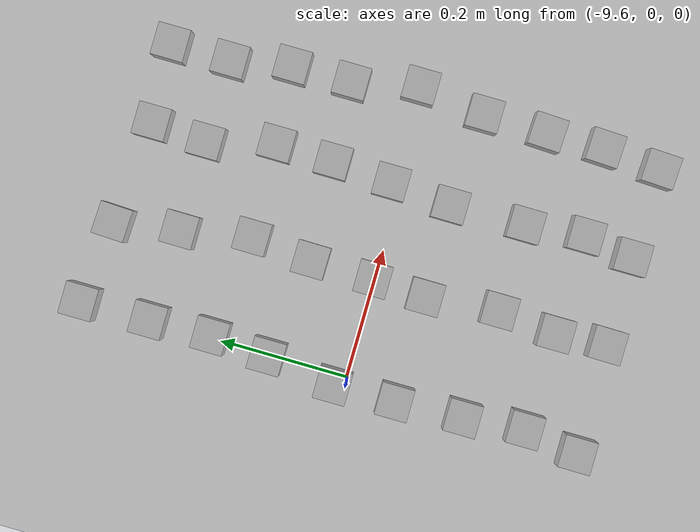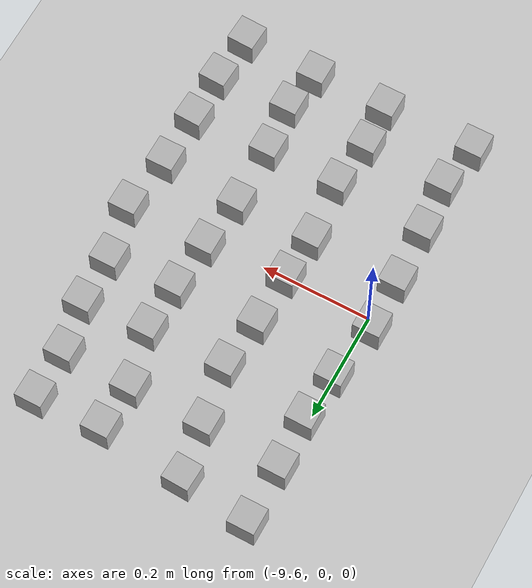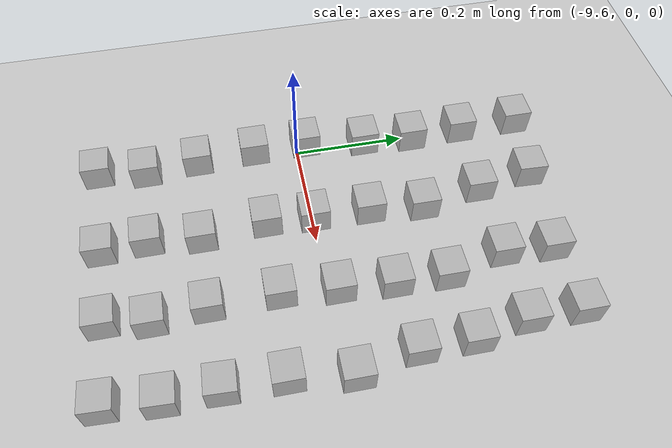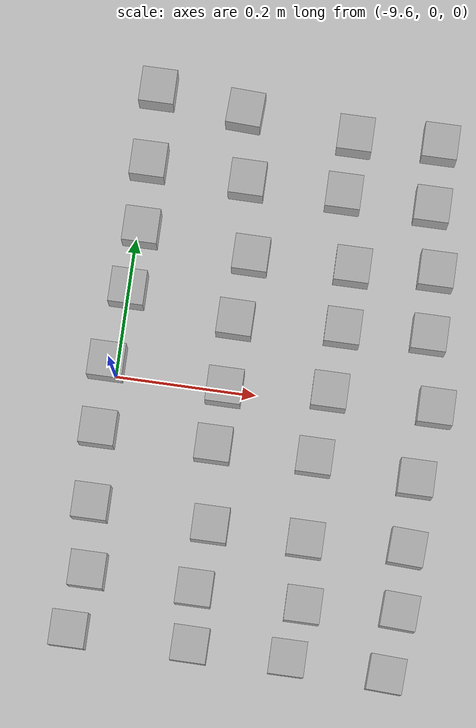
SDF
<sdf version="1.6">
 <world name="default">
  <model name="ground_plane">
   <static>1</static>
   <link name="link">
    <collision name="collision">
     <geometry><plane><normal>0 0 1</normal><size>100 100</size></plane></geometry>
     <surface><friction><ode><mu>100</mu><mu2>50</mu2></ode></friction></surface>
    </collision>
    <visual name="visual">
     <cast_shadows>0</cast_shadows>
     <geometry><plane><normal>0 0 1</normal><size>100 100</size></plane></geometry>
     <material>
      <script><uri>file://media/materials/scripts/gazebo.material</uri><name>Gazebo/Grey</name></script>
     </material>
    </visual>
   </link>
  </model>
  <light name="sun" type="directional">
   <pose>0 0 10 0 -0 0</pose>
   <diffuse>0.8 0.8 0.8 1</diffuse>
   <specular>0.1 0.1 0.1 1</specular>
   <attenuation>
    <range>1000</range>
    <constant>0.9</constant>
    <linear>0.01</linear>
    <quadratic>0.001</quadratic>
   </attenuation>
   <direction>-0.5 0.5 -1</direction>
  </light>
  <plugin name="SetupWorld" filename="libgazebo_plugins.so"/>
  <gravity>0 0 -9.8</gravity>
  <magnetic_field>6e-06 2.3e-05 -4.2e-05</magnetic_field>
  <atmosphere type="adiabatic"/>
  <physics name="default_physics" default="0" type="ode">
   <max_step_size>0.001</max_step_size>
   <real_time_factor>1</real_time_factor>
   <real_time_update_rate>1000</real_time_update_rate>
  </physics>
  <scene><ambient>0.4 0.4 0.4 1</ambient><background>0.7 0.7 0.7 1</background><shadows>1</shadows></scene>
  <spherical_coordinates>
   <surface_model>EARTH_WGS84</surface_model>
   <latitude_deg>0</latitude_deg>
   <longitude_deg>0</longitude_deg>
   <elevation>0</elevation>
   <heading_deg>0</heading_deg>
  </spherical_coordinates>
  <model name="at0">
   <static>0</static>
   <link name="link">
    <inertial>
     <mass>0.01</mass>
     <inertia><ixx>4e-05</ixx><ixy>0</ixy><ixz>0</ixz><iyy>4e-05</iyy><iyz>0</iyz><izz>4e-05</izz></inertia>
    </inertial>
    <visual name="visual">
     <geometry><box><size>0.05 0.05 0.05</size></box></geometry>
     <material>
      <script>
       <uri>model://at0/materials/scripts</uri>
       <uri>model://at0/materials/textures</uri>
       <name>at0/Diffuse</name>
      </script>
     </material>
    </visual>
    <collision name="collision">
     <geometry><box><size>0.05 0.05 0.05</size></box></geometry>
     <surface><friction><ode><mu>0.8</mu><mu2>0.7</mu2></ode></friction></surface>
    </collision>
   </link>
   <pose>-9.16149 -0.187463 0.024992 -2.9e-05 -2.9e-05 -0.04398</pose>
  </model>
  <model name="at0_clone">
   <static>0</static>
   <link name="link">
    <inertial>
     <mass>0.01</mass>
     <inertia><ixx>4e-05</ixx><ixy>0</ixy><ixz>0</ixz><iyy>4e-05</iyy><iyz>0</iyz><izz>4e-05</izz></inertia>
    </inertial>
    <visual name="visual">
     <geometry><box><size>0.05 0.05 0.05</size></box></geometry>
     <material>
      <script>
       <uri>model://at0/materials/scripts</uri>
       <uri>model://at0/materials/textures</uri>
       <name>at0/Diffuse</name>
      </script>
     </material>
    </visual>
    <collision name="collision">
     <geometry><box><size>0.05 0.05 0.05</size></box></geometry>
     <surface><friction><ode><mu>0.8</mu><mu2>0.7</mu2></ode></friction></surface>
    </collision>
   </link>
   <pose>-9.44283 0.100952 0.025 0 0 -0.007828</pose>
  </model>
  <model name="at0_clone_0">
   <static>0</static>
   <link name="link">
    <inertial>
     <mass>0.01</mass>
     <inertia><ixx>4e-05</ixx><ixy>0</ixy><ixz>0</ixz><iyy>4e-05</iyy><iyz>0</iyz><izz>4e-05</izz></inertia>
    </inertial>
    <visual name="visual">
     <geometry><box><size>0.05 0.05 0.05</size></box></geometry>
     <material>
      <script>
       <uri>model://at0/materials/scripts</uri>
       <uri>model://at0/materials/textures</uri>
       <name>at0/Diffuse</name>
      </script>
     </material>
    </visual>
    <collision name="collision">
     <geometry><box><size>0.05 0.05 0.05</size></box></geometry>
     <surface><friction><ode><mu>0.8</mu><mu2>0.7</mu2></ode></friction></surface>
    </collision>
   </link>
   <pose>-9.44298 -0.361066 0.025 0 0 -0.007842</pose>
  </model>
  <model name="at0_clone_1">
   <static>0</static>
   <link name="link">
    <inertial>
     <mass>0.01</mass>
     <inertia><ixx>4e-05</ixx><ixy>0</ixy><ixz>0</ixz><iyy>4e-05</iyy><iyz>0</iyz><izz>4e-05</izz></inertia>
    </inertial>
    <visual name="visual">
     <geometry><box><size>0.05 0.05 0.05</size></box></geometry>
     <material>
      <script>
       <uri>model://at0/materials/scripts</uri>
       <uri>model://at0/materials/textures</uri>
       <name>at0/Diffuse</name>
      </script>
     </material>
    </visual>
    <collision name="collision">
     <geometry><box><size>0.05 0.05 0.05</size></box></geometry>
     <surface><friction><ode><mu>0.8</mu><mu2>0.7</mu2></ode></friction></surface>
    </collision>
   </link>
   <pose>-9.30946 0.386055 0.025 0 0 -8.7e-05</pose>
  </model>
  <model name="at0_clone_2">
   <static>0</static>
   <link name="link">
    <inertial>
     <mass>0.01</mass>
     <inertia><ixx>4e-05</ixx><ixy>0</ixy><ixz>0</ixz><iyy>4e-05</iyy><iyz>0</iyz><izz>4e-05</izz></inertia>
    </inertial>
    <visual name="visual">
     <geometry><box><size>0.05 0.05 0.05</size></box></geometry>
     <material>
      <script>
       <uri>model://at0/materials/scripts</uri>
       <uri>model://at0/materials/textures</uri>
       <name>at0/Diffuse</name>
      </script>
     </material>
    </visual>
    <collision name="collision">
     <geometry><box><size>0.05 0.05 0.05</size></box></geometry>
     <surface><friction><ode><mu>0.8</mu><mu2>0.7</mu2></ode></friction></surface>
    </collision>
   </link>
   <pose>-9.46961 0.401419 0.025 0 0 -0.043988</pose>
  </model>
  <model name="at0_clone_3">
   <static>0</static>
   <link name="link">
    <inertial>
     <mass>0.01</mass>
     <inertia><ixx>4e-05</ixx><ixy>0</ixy><ixz>0</ixz><iyy>4e-05</iyy><iyz>0</iyz><izz>4e-05</izz></inertia>
    </inertial>
    <visual name="visual">
     <geometry><box><size>0.05 0.05 0.05</size></box></geometry>
     <material>
      <script>
       <uri>model://at0/materials/scripts</uri>
       <uri>model://at0/materials/textures</uri>
       <name>at0/Diffuse</name>
      </script>
     </material>
    </visual>
    <collision name="collision">
     <geometry><box><size>0.05 0.05 0.05</size></box></geometry>
     <surface><friction><ode><mu>0.8</mu><mu2>0.7</mu2></ode></friction></surface>
    </collision>
   </link>
   <pose>-9.29716 0.017074 0.025 0 -0 0</pose>
  </model>
  <model name="at0_clone_4">
   <static>0</static>
   <link name="link">
    <inertial>
     <mass>0.01</mass>
     <inertia><ixx>4e-05</ixx><ixy>0</ixy><ixz>0</ixz><iyy>4e-05</iyy><iyz>0</iyz><izz>4e-05</izz></inertia>
    </inertial>
    <visual name="visual">
     <geometry><box><size>0.05 0.05 0.05</size></box></geometry>
     <material>
      <script>
       <uri>model://at0/materials/scripts</uri>
       <uri>model://at0/materials/textures</uri>
       <name>at0/Diffuse</name>
      </script>
     </material>
    </visual>
    <collision name="collision">
     <geometry><box><size>0.05 0.05 0.05</size></box></geometry>
     <surface><friction><ode><mu>0.8</mu><mu2>0.7</mu2></ode></friction></surface>
    </collision>
   </link>
   <pose>-9.61258 -0.078194 0.025 0 -0 0</pose>
  </model>
  <model name="at0_clone_5">
   <static>0</static>
   <link name="link">
    <inertial>
     <mass>0.01</mass>
     <inertia><ixx>4e-05</ixx><ixy>0</ixy><ixz>0</ixz><iyy>4e-05</iyy><iyz>0</iyz><izz>4e-05</izz></inertia>
    </inertial>
    <visual name="visual">
     <geometry><box><size>0.05 0.05 0.05</size></box></geometry>
     <material>
      <script>
       <uri>model://at0/materials/scripts</uri>
       <uri>model://at0/materials/textures</uri>
       <name>at0/Diffuse</name>
      </script>
     </material>
    </visual>
    <collision name="collision">
     <geometry><box><size>0.05 0.05 0.05</size></box></geometry>
     <surface><friction><ode><mu>0.8</mu><mu2>0.7</mu2></ode></friction></surface>
    </collision>
   </link>
   <pose>-9.28887 0.19817 0.025 0 -0 0</pose>
  </model>
  <model name="at0_clone_6">
   <static>0</static>
   <link name="link">
    <inertial>
     <mass>0.01</mass>
     <inertia><ixx>4e-05</ixx><ixy>0</ixy><ixz>0</ixz><iyy>4e-05</iyy><iyz>0</iyz><izz>4e-05</izz></inertia>
    </inertial>
    <visual name="visual">
     <geometry><box><size>0.05 0.05 0.05</size></box></geometry>
     <material>
      <script>
       <uri>model://at0/materials/scripts</uri>
       <uri>model://at0/materials/textures</uri>
       <name>at0/Diffuse</name>
      </script>
     </material>
    </visual>
    <collision name="collision">
     <geometry><box><size>0.05 0.05 0.05</size></box></geometry>
     <surface><friction><ode><mu>0.8</mu><mu2>0.7</mu2></ode></friction></surface>
    </collision>
   </link>
   <pose>-9.45318 0.301941 0.025 0 0 -0.004499</pose>
  </model>
  <model name="at0_clone_7">
   <static>0</static>
   <link name="link">
    <inertial>
     <mass>0.01</mass>
     <inertia><ixx>4e-05</ixx><ixy>0</ixy><ixz>0</ixz><iyy>4e-05</iyy><iyz>0</iyz><izz>4e-05</izz></inertia>
    </inertial>
    <visual name="visual">
     <geometry><box><size>0.05 0.05 0.05</size></box></geometry>
     <material>
      <script>
       <uri>model://at0/materials/scripts</uri>
       <uri>model://at0/materials/textures</uri>
       <name>at0/Diffuse</name>
      </script>
     </material>
    </visual>
    <collision name="collision">
     <geometry><box><size>0.05 0.05 0.05</size></box></geometry>
     <surface><friction><ode><mu>0.8</mu><mu2>0.7</mu2></ode></friction></surface>
    </collision>
   </link>
   <pose>-9.43335 0.194752 0.025 0 0 -0.004502</pose>
  </model>
  <model name="at0_clone_8">
   <static>0</static>
   <link name="link">
    <inertial>
     <mass>0.01</mass>
     <inertia><ixx>4e-05</ixx><ixy>0</ixy><ixz>0</ixz><iyy>4e-05</iyy><iyz>0</iyz><izz>4e-05</izz></inertia>
    </inertial>
    <visual name="visual">
     <geometry><box><size>0.05 0.05 0.05</size></box></geometry>
     <material>
      <script>
       <uri>model://at0/materials/scripts</uri>
       <uri>model://at0/materials/textures</uri>
       <name>at0/Diffuse</name>
      </script>
     </material>
    </visual>
    <collision name="collision">
     <geometry><box><size>0.05 0.05 0.05</size></box></geometry>
     <surface><friction><ode><mu>0.8</mu><mu2>0.7</mu2></ode></friction></surface>
    </collision>
   </link>
   <pose>-9.29073 0.109529 0.024995 -1.4e-05 3.2e-05 -0.00014</pose>
  </model>
  <model name="at0_clone_9">
   <static>0</static>
   <link name="link">
    <inertial>
     <mass>0.01</mass>
     <inertia><ixx>4e-05</ixx><ixy>0</ixy><ixz>0</ixz><iyy>4e-05</iyy><iyz>0</iyz><izz>4e-05</izz></inertia>
    </inertial>
    <visual name="visual">
     <geometry><box><size>0.05 0.05 0.05</size></box></geometry>
     <material>
      <script>
       <uri>model://at0/materials/scripts</uri>
       <uri>model://at0/materials/textures</uri>
       <name>at0/Diffuse</name>
      </script>
     </material>
    </visual>
    <collision name="collision">
     <geometry><box><size>0.05 0.05 0.05</size></box></geometry>
     <surface><friction><ode><mu>0.8</mu><mu2>0.7</mu2></ode></friction></surface>
    </collision>
   </link>
   <pose>-9.6075 -0.182973 0.025 0 -0 0</pose>
  </model>
  <model name="at0_clone_10">
   <static>0</static>
   <link name="link">
    <inertial>
     <mass>0.01</mass>
     <inertia><ixx>4e-05</ixx><ixy>0</ixy><ixz>0</ixz><iyy>4e-05</iyy><iyz>0</iyz><izz>4e-05</izz></inertia>
    </inertial>
    <visual name="visual">
     <geometry><box><size>0.05 0.05 0.05</size></box></geometry>
     <material>
      <script>
       <uri>model://at0/materials/scripts</uri>
       <uri>model://at0/materials/textures</uri>
       <name>at0/Diffuse</name>
      </script>
     </material>
    </visual>
    <collision name="collision">
     <geometry><box><size>0.05 0.05 0.05</size></box></geometry>
     <surface><friction><ode><mu>0.8</mu><mu2>0.7</mu2></ode></friction></surface>
    </collision>
   </link>
   <pose>-9.30642 -0.361124 0.025 0 -0 0</pose>
  </model>
  <model name="at0_clone_11">
   <static>0</static>
   <link name="link">
    <inertial>
     <mass>0.01</mass>
     <inertia><ixx>4e-05</ixx><ixy>0</ixy><ixz>0</ixz><iyy>4e-05</iyy><iyz>0</iyz><izz>4e-05</izz></inertia>
    </inertial>
    <visual name="visual">
     <geometry><box><size>0.05 0.05 0.05</size></box></geometry>
     <material>
      <script>
       <uri>model://at0/materials/scripts</uri>
       <uri>model://at0/materials/textures</uri>
       <name>at0/Diffuse</name>
      </script>
     </material>
    </visual>
    <collision name="collision">
     <geometry><box><size>0.05 0.05 0.05</size></box></geometry>
     <surface><friction><ode><mu>0.8</mu><mu2>0.7</mu2></ode></friction></surface>
    </collision>
   </link>
   <pose>-9.59298 0.21411 0.025 0 -0 0</pose>
  </model>
  <model name="at0_clone_12">
   <static>0</static>
   <link name="link">
    <inertial>
     <mass>0.01</mass>
     <inertia><ixx>4e-05</ixx><ixy>0</ixy><ixz>0</ixz><iyy>4e-05</iyy><iyz>0</iyz><izz>4e-05</izz></inertia>
    </inertial>
    <visual name="visual">
     <geometry><box><size>0.05 0.05 0.05</size></box></geometry>
     <material>
      <script>
       <uri>model://at0/materials/scripts</uri>
       <uri>model://at0/materials/textures</uri>
       <name>at0/Diffuse</name>
      </script>
     </material>
    </visual>
    <collision name="collision">
     <geometry><box><size>0.05 0.05 0.05</size></box></geometry>
     <surface><friction><ode><mu>0.8</mu><mu2>0.7</mu2></ode></friction></surface>
    </collision>
   </link>
   <pose>-9.43785 -0.191913 0.025 0 -0 0</pose>
  </model>
  <model name="at0_clone_13">
   <static>0</static>
   <link name="link">
    <inertial>
     <mass>0.01</mass>
     <inertia><ixx>4e-05</ixx><ixy>0</ixy><ixz>0</ixz><iyy>4e-05</iyy><iyz>0</iyz><izz>4e-05</izz></inertia>
    </inertial>
    <visual name="visual">
     <geometry><box><size>0.05 0.05 0.05</size></box></geometry>
     <material>
      <script>
       <uri>model://at0/materials/scripts</uri>
       <uri>model://at0/materials/textures</uri>
       <name>at0/Diffuse</name>
      </script>
     </material>
    </visual>
    <collision name="collision">
     <geometry><box><size>0.05 0.05 0.05</size></box></geometry>
     <surface><friction><ode><mu>0.8</mu><mu2>0.7</mu2></ode></friction></surface>
    </collision>
   </link>
   <pose>-9.44904 -0.079288 0.025 0 -0 0</pose>
  </model>
  <model name="at0_clone_14">
   <static>0</static>
   <link name="link">
    <inertial>
     <mass>0.01</mass>
     <inertia><ixx>4e-05</ixx><ixy>0</ixy><ixz>0</ixz><iyy>4e-05</iyy><iyz>0</iyz><izz>4e-05</izz></inertia>
    </inertial>
    <visual name="visual">
     <geometry><box><size>0.05 0.05 0.05</size></box></geometry>
     <material>
      <script>
       <uri>model://at0/materials/scripts</uri>
       <uri>model://at0/materials/textures</uri>
       <name>at0/Diffuse</name>
      </script>
     </material>
    </visual>
    <collision name="collision">
     <geometry><box><size>0.05 0.05 0.05</size></box></geometry>
     <surface><friction><ode><mu>0.8</mu><mu2>0.7</mu2></ode></friction></surface>
    </collision>
   </link>
   <pose>-9.61272 -0.362801 0.025 0 -0 0</pose>
  </model>
  <model name="at0_clone_15">
   <static>0</static>
   <link name="link">
    <inertial>
     <mass>0.01</mass>
     <inertia><ixx>4e-05</ixx><ixy>0</ixy><ixz>0</ixz><iyy>4e-05</iyy><iyz>0</iyz><izz>4e-05</izz></inertia>
    </inertial>
    <visual name="visual">
     <geometry><box><size>0.05 0.05 0.05</size></box></geometry>
     <material>
      <script>
       <uri>model://at0/materials/scripts</uri>
       <uri>model://at0/materials/textures</uri>
       <name>at0/Diffuse</name>
      </script>
     </material>
    </visual>
    <collision name="collision">
     <geometry><box><size>0.05 0.05 0.05</size></box></geometry>
     <surface><friction><ode><mu>0.8</mu><mu2>0.7</mu2></ode></friction></surface>
    </collision>
   </link>
   <pose>-9.1465 0.014164 0.025 0 -0 0</pose>
  </model>
  <model name="at0_clone_16">
   <static>0</static>
   <link name="link">
    <inertial>
     <mass>0.01</mass>
     <inertia><ixx>4e-05</ixx><ixy>0</ixy><ixz>0</ixz><iyy>4e-05</iyy><iyz>0</iyz><izz>4e-05</izz></inertia>
    </inertial>
    <visual name="visual">
     <geometry><box><size>0.05 0.05 0.05</size></box></geometry>
     <material>
      <script>
       <uri>model://at0/materials/scripts</uri>
       <uri>model://at0/materials/textures</uri>
       <name>at0/Diffuse</name>
      </script>
     </material>
    </visual>
    <collision name="collision">
     <geometry><box><size>0.05 0.05 0.05</size></box></geometry>
     <surface><friction><ode><mu>0.8</mu><mu2>0.7</mu2></ode></friction></surface>
    </collision>
   </link>
   <pose>-9.16102 -0.089122 0.025 0 -0 0</pose>
  </model>
  <model name="at0_clone_17">
   <static>0</static>
   <link name="link">
    <inertial>
     <mass>0.01</mass>
     <inertia><ixx>4e-05</ixx><ixy>0</ixy><ixz>0</ixz><iyy>4e-05</iyy><iyz>0</iyz><izz>4e-05</izz></inertia>
    </inertial>
    <visual name="visual">
     <geometry><box><size>0.05 0.05 0.05</size></box></geometry>
     <material>
      <script>
       <uri>model://at0/materials/scripts</uri>
       <uri>model://at0/materials/textures</uri>
       <name>at0/Diffuse</name>
      </script>
     </material>
    </visual>
    <collision name="collision">
     <geometry><box><size>0.05 0.05 0.05</size></box></geometry>
     <surface><friction><ode><mu>0.8</mu><mu2>0.7</mu2></ode></friction></surface>
    </collision>
   </link>
   <pose>-9.30354 -0.194253 0.025 0 0 -0.003158</pose>
  </model>
  <model name="at0_clone_18">
   <static>0</static>
   <link name="link">
    <inertial>
     <mass>0.01</mass>
     <inertia><ixx>4e-05</ixx><ixy>0</ixy><ixz>0</ixz><iyy>4e-05</iyy><iyz>0</iyz><izz>4e-05</izz></inertia>
    </inertial>
    <visual name="visual">
     <geometry><box><size>0.05 0.05 0.05</size></box></geometry>
     <material>
      <script>
       <uri>model://at0/materials/scripts</uri>
       <uri>model://at0/materials/textures</uri>
       <name>at0/Diffuse</name>
      </script>
     </material>
    </visual>
    <collision name="collision">
     <geometry><box><size>0.05 0.05 0.05</size></box></geometry>
     <surface><friction><ode><mu>0.8</mu><mu2>0.7</mu2></ode></friction></surface>
    </collision>
   </link>
   <pose>-9.30602 -0.077791 0.025 0 0 -0.003212</pose>
  </model>
  <model name="at0_clone_19">
   <static>0</static>
   <link name="link">
    <inertial>
     <mass>0.01</mass>
     <inertia><ixx>4e-05</ixx><ixy>0</ixy><ixz>0</ixz><iyy>4e-05</iyy><iyz>0</iyz><izz>4e-05</izz></inertia>
    </inertial>
    <visual name="visual">
     <geometry><box><size>0.05 0.05 0.05</size></box></geometry>
     <material>
      <script>
       <uri>model://at0/materials/scripts</uri>
       <uri>model://at0/materials/textures</uri>
       <name>at0/Diffuse</name>
      </script>
     </material>
    </visual>
    <collision name="collision">
     <geometry><box><size>0.05 0.05 0.05</size></box></geometry>
     <surface><friction><ode><mu>0.8</mu><mu2>0.7</mu2></ode></friction></surface>
    </collision>
   </link>
   <pose>-9.59599 0.309765 0.025 0 -0 0</pose>
  </model>
  <model name="at0_clone_20">
   <static>0</static>
   <link name="link">
    <inertial>
     <mass>0.01</mass>
     <inertia><ixx>4e-05</ixx><ixy>0</ixy><ixz>0</ixz><iyy>4e-05</iyy><iyz>0</iyz><izz>4e-05</izz></inertia>
    </inertial>
    <visual name="visual">
     <geometry><box><size>0.05 0.05 0.05</size></box></geometry>
     <material>
      <script>
       <uri>model://at0/materials/scripts</uri>
       <uri>model://at0/materials/textures</uri>
       <name>at0/Diffuse</name>
      </script>
     </material>
    </visual>
    <collision name="collision">
     <geometry><box><size>0.05 0.05 0.05</size></box></geometry>
     <surface><friction><ode><mu>0.8</mu><mu2>0.7</mu2></ode></friction></surface>
    </collision>
   </link>
   <pose>-9.44478 0.003549 0.025 0 -0 0</pose>
  </model>
  <model name="at0_clone_21">
   <static>0</static>
   <link name="link">
    <inertial>
     <mass>0.01</mass>
     <inertia><ixx>4e-05</ixx><ixy>0</ixy><ixz>0</ixz><iyy>4e-05</iyy><iyz>0</iyz><izz>4e-05</izz></inertia>
    </inertial>
    <visual name="visual">
     <geometry><box><size>0.05 0.05 0.05</size></box></geometry>
     <material>
      <script>
       <uri>model://at0/materials/scripts</uri>
       <uri>model://at0/materials/textures</uri>
       <name>at0/Diffuse</name>
      </script>
     </material>
    </visual>
    <collision name="collision">
     <geometry><box><size>0.05 0.05 0.05</size></box></geometry>
     <surface><friction><ode><mu>0.8</mu><mu2>0.7</mu2></ode></friction></surface>
    </collision>
   </link>
   <pose>-9.1699 0.207578 0.025 0 0 -6.5e-05</pose>
  </model>
  <model name="at0_clone_22">
   <static>0</static>
   <link name="link">
    <inertial>
     <mass>0.01</mass>
     <inertia><ixx>4e-05</ixx><ixy>0</ixy><ixz>0</ixz><iyy>4e-05</iyy><iyz>0</iyz><izz>4e-05</izz></inertia>
    </inertial>
    <visual name="visual">
     <geometry><box><size>0.05 0.05 0.05</size></box></geometry>
     <material>
      <script>
       <uri>model://at0/materials/scripts</uri>
       <uri>model://at0/materials/textures</uri>
       <name>at0/Diffuse</name>
      </script>
     </material>
    </visual>
    <collision name="collision">
     <geometry><box><size>0.05 0.05 0.05</size></box></geometry>
     <surface><friction><ode><mu>0.8</mu><mu2>0.7</mu2></ode></friction></surface>
    </collision>
   </link>
   <pose>-9.29447 -0.285497 0.025 0 0 -6.5e-05</pose>
  </model>
  <model name="at0_clone_23">
   <static>0</static>
   <link name="link">
    <inertial>
     <mass>0.01</mass>
     <inertia><ixx>4e-05</ixx><ixy>0</ixy><ixz>0</ixz><iyy>4e-05</iyy><iyz>0</iyz><izz>4e-05</izz></inertia>
    </inertial>
    <visual name="visual">
     <geometry><box><size>0.05 0.05 0.05</size></box></geometry>
     <material>
      <script>
       <uri>model://at0/materials/scripts</uri>
       <uri>model://at0/materials/textures</uri>
       <name>at0/Diffuse</name>
      </script>
     </material>
    </visual>
    <collision name="collision">
     <geometry><box><size>0.05 0.05 0.05</size></box></geometry>
     <surface><friction><ode><mu>0.8</mu><mu2>0.7</mu2></ode></friction></surface>
    </collision>
   </link>
   <pose>-9.59882 -0.277594 0.025 0 -0 0</pose>
  </model>
  <model name="at0_clone_24">
   <static>0</static>
   <link name="link">
    <inertial>
     <mass>0.01</mass>
     <inertia><ixx>4e-05</ixx><ixy>0</ixy><ixz>0</ixz><iyy>4e-05</iyy><iyz>0</iyz><izz>4e-05</izz></inertia>
    </inertial>
    <visual name="visual">
     <geometry><box><size>0.05 0.05 0.05</size></box></geometry>
     <material>
      <script>
       <uri>model://at0/materials/scripts</uri>
       <uri>model://at0/materials/textures</uri>
       <name>at0/Diffuse</name>
      </script>
     </material>
    </visual>
    <collision name="collision">
     <geometry><box><size>0.05 0.05 0.05</size></box></geometry>
     <surface><friction><ode><mu>0.8</mu><mu2>0.7</mu2></ode></friction></surface>
    </collision>
   </link>
   <pose>-9.16868 0.116118 0.025 0 -0 5e-06</pose>
  </model>
  <model name="at0_clone_25">
   <static>0</static>
   <link name="link">
    <inertial>
     <mass>0.01</mass>
     <inertia><ixx>4e-05</ixx><ixy>0</ixy><ixz>0</ixz><iyy>4e-05</iyy><iyz>0</iyz><izz>4e-05</izz></inertia>
    </inertial>
    <visual name="visual">
     <geometry><box><size>0.05 0.05 0.05</size></box></geometry>
     <material>
      <script>
       <uri>model://at0/materials/scripts</uri>
       <uri>model://at0/materials/textures</uri>
       <name>at0/Diffuse</name>
      </script>
     </material>
    </visual>
    <collision name="collision">
     <geometry><box><size>0.05 0.05 0.05</size></box></geometry>
     <surface><friction><ode><mu>0.8</mu><mu2>0.7</mu2></ode></friction></surface>
    </collision>
   </link>
   <pose>-9.44754 -0.282397 0.025 0 -0 0</pose>
  </model>
  <model name="at0_clone_26">
   <static>0</static>
   <link name="link">
    <inertial>
     <mass>0.01</mass>
     <inertia><ixx>4e-05</ixx><ixy>0</ixy><ixz>0</ixz><iyy>4e-05</iyy><iyz>0</iyz><izz>4e-05</izz></inertia>
    </inertial>
    <visual name="visual">
     <geometry><box><size>0.05 0.05 0.05</size></box></geometry>
     <material>
      <script>
       <uri>model://at0/materials/scripts</uri>
       <uri>model://at0/materials/textures</uri>
       <name>at0/Diffuse</name>
      </script>
     </material>
    </visual>
    <collision name="collision">
     <geometry><box><size>0.05 0.05 0.05</size></box></geometry>
     <surface><friction><ode><mu>0.8</mu><mu2>0.7</mu2></ode></friction></surface>
    </collision>
   </link>
   <pose>-9.18792 0.299239 0.025 0 -0 0</pose>
  </model>
  <model name="at0_clone_27">
   <static>0</static>
   <link name="link">
    <inertial>
     <mass>0.01</mass>
     <inertia><ixx>4e-05</ixx><ixy>0</ixy><ixz>0</ixz><iyy>4e-05</iyy><iyz>0</iyz><izz>4e-05</izz></inertia>
    </inertial>
    <visual name="visual">
     <geometry><box><size>0.05 0.05 0.05</size></box></geometry>
     <material>
      <script>
       <uri>model://at0/materials/scripts</uri>
       <uri>model://at0/materials/textures</uri>
       <name>at0/Diffuse</name>
      </script>
     </material>
    </visual>
    <collision name="collision">
     <geometry><box><size>0.05 0.05 0.05</size></box></geometry>
     <surface><friction><ode><mu>0.8</mu><mu2>0.7</mu2></ode></friction></surface>
    </collision>
   </link>
   <pose>-9.18801 0.391077 0.025 0 -0 0</pose>
  </model>
  <model name="at0_clone_28">
   <static>0</static>
   <link name="link">
    <inertial>
     <mass>0.01</mass>
     <inertia><ixx>4e-05</ixx><ixy>0</ixy><ixz>0</ixz><iyy>4e-05</iyy><iyz>0</iyz><izz>4e-05</izz></inertia>
    </inertial>
    <visual name="visual">
     <geometry><box><size>0.05 0.05 0.05</size></box></geometry>
     <material>
      <script>
       <uri>model://at0/materials/scripts</uri>
       <uri>model://at0/materials/textures</uri>
       <name>at0/Diffuse</name>
      </script>
     </material>
    </visual>
    <collision name="collision">
     <geometry><box><size>0.05 0.05 0.05</size></box></geometry>
     <surface><friction><ode><mu>0.8</mu><mu2>0.7</mu2></ode></friction></surface>
    </collision>
   </link>
   <pose>-9.59943 0.124514 0.025 0 -0 0</pose>
  </model>
  <model name="at0_clone_29">
   <static>0</static>
   <link name="link">
    <inertial>
     <mass>0.01</mass>
     <inertia><ixx>4e-05</ixx><ixy>0</ixy><ixz>0</ixz><iyy>4e-05</iyy><iyz>0</iyz><izz>4e-05</izz></inertia>
    </inertial>
    <visual name="visual">
     <geometry><box><size>0.05 0.05 0.05</size></box></geometry>
     <material>
      <script>
       <uri>model://at0/materials/scripts</uri>
       <uri>model://at0/materials/textures</uri>
       <name>at0/Diffuse</name>
      </script>
     </material>
    </visual>
    <collision name="collision">
     <geometry><box><size>0.05 0.05 0.05</size></box></geometry>
     <surface><friction><ode><mu>0.8</mu><mu2>0.7</mu2></ode></friction></surface>
    </collision>
   </link>
   <pose>-9.31489 0.301241 0.024997 -2.9e-05 -2.9e-05 -8.3e-05</pose>
  </model>
  <model name="at0_clone_30">
   <static>0</static>
   <link name="link">
    <inertial>
     <mass>0.01</mass>
     <inertia><ixx>4e-05</ixx><ixy>0</ixy><ixz>0</ixz><iyy>4e-05</iyy><iyz>0</iyz><izz>4e-05</izz></inertia>
    </inertial>
    <visual name="visual">
     <geometry><box><size>0.05 0.05 0.05</size></box></geometry>
     <material>
      <script>
       <uri>model://at0/materials/scripts</uri>
       <uri>model://at0/materials/textures</uri>
       <name>at0/Diffuse</name>
      </script>
     </material>
    </visual>
    <collision name="collision">
     <geometry><box><size>0.05 0.05 0.05</size></box></geometry>
     <surface><friction><ode><mu>0.8</mu><mu2>0.7</mu2></ode></friction></surface>
    </collision>
   </link>
   <pose>-9.59749 0.416807 0.025 0 -0 0</pose>
  </model>
  <model name="at0_clone_31">
   <static>0</static>
   <link name="link">
    <inertial>
     <mass>0.01</mass>
     <inertia><ixx>4e-05</ixx><ixy>0</ixy><ixz>0</ixz><iyy>4e-05</iyy><iyz>0</iyz><izz>4e-05</izz></inertia>
    </inertial>
    <visual name="visual">
     <geometry><box><size>0.05 0.05 0.05</size></box></geometry>
     <material>
      <script>
       <uri>model://at0/materials/scripts</uri>
       <uri>model://at0/materials/textures</uri>
       <name>at0/Diffuse</name>
      </script>
     </material>
    </visual>
    <collision name="collision">
     <geometry><box><size>0.05 0.05 0.05</size></box></geometry>
     <surface><friction><ode><mu>0.8</mu><mu2>0.7</mu2></ode></friction></surface>
    </collision>
   </link>
   <pose>-9.61438 0.01756 0.025 0 -0 0</pose>
  </model>
  <model name="Barrier Final Round_clone_1">
   <static>1</static>
   <link name="link">
    <inertial>
     <mass>1</mass>
     <inertia><ixx>0.083</ixx><ixy>0</ixy><ixz>0</ixz><iyy>0</iyy><iyz>0</iyz><izz>0.083</izz></inertia>
    </inertial>
    <collision name="collision">
     <geometry><box><size>0.05 3.1181 0.33</size></box></geometry>
     <surface><friction><ode><mu>1</mu><mu2>1</mu2><slip1>0</slip1><slip2>0</slip2></ode></friction></surface>
    </collision>
    <visual name="visual">
     <geometry><box><size>0.05 3.1181 0.33</size></box></geometry>
     <material>
      <ambient>255 131 0 1</ambient>
      <diffuse>255 131 0 1</diffuse>
      <specular>0.1 0.1 0.1 1</specular>
      <emissive>0 0 0 0</emissive>
     </material>
    </visual>
   </link>
   <pose>-9.76452 -0.15529 0 0 0 -3.12143</pose>
  </model>
  <model name="Barrier Final Round_clone_0_clone">
   <static>1</static>
   <link name="link">
    <inertial>
     <mass>1</mass>
     <inertia><ixx>0.083</ixx><ixy>0</ixy><ixz>0</ixz><iyy>0</iyy><iyz>0</iyz><izz>0.083</izz></inertia>
    </inertial>
    <collision name="collision">
     <geometry><box><size>0.05 11.9631 0.33</size></box></geometry>
     <surface><friction><ode><mu>1</mu><mu2>1</mu2><slip1>0</slip1><slip2>0</slip2></ode></friction></surface>
    </collision>
    <visual name="visual">
     <geometry><box><size>0.05 11.9631 0.33</size></box></geometry>
     <material>
      <ambient>255 131 0 1</ambient>
      <diffuse>255 131 0 1</diffuse>
      <specular>0.1 0.1 0.1 1</specular>
      <emissive>0 0 0 0</emissive>
     </material>
    </visual>
   </link>
   <pose>-3.8068 1.36293 0 0 0 -1.57363</pose>
  </model>
  <model name="at0_clone_32">
   <static>0</static>
   <link name="link">
    <inertial>
     <mass>0.01</mass>
     <inertia><ixx>4e-05</ixx><ixy>0</ixy><ixz>0</ixz><iyy>4e-05</iyy><iyz>0</iyz><izz>4e-05</izz></inertia>
    </inertial>
    <visual name="visual">
     <geometry><box><size>0.05 0.05 0.05</size></box></geometry>
     <material>
      <script>
       <uri>model://at0/materials/scripts</uri>
       <uri>model://at0/materials/textures</uri>
       <name>at0/Diffuse</name>
      </script>
     </material>
    </visual>
    <collision name="collision">
     <geometry><box><size>0.05 0.05 0.05</size></box></geometry>
     <surface><friction><ode><mu>0.8</mu><mu2>0.7</mu2></ode></friction></surface>
    </collision>
   </link>
   <pose>-9.16042 -0.276608 0.025 0 0 -0.043979</pose>
  </model>
  <model name="at0_clone_33">
   <static>0</static>
   <link name="link">
    <inertial>
     <mass>0.01</mass>
     <inertia><ixx>4e-05</ixx><ixy>0</ixy><ixz>0</ixz><iyy>4e-05</iyy><iyz>0</iyz><izz>4e-05</izz></inertia>
    </inertial>
    <visual name="visual">
     <geometry><box><size>0.05 0.05 0.05</size></box></geometry>
     <material>
      <script>
       <uri>model://at0/materials/scripts</uri>
       <uri>model://at0/materials/textures</uri>
       <name>at0/Diffuse</name>
      </script>
     </material>
    </visual>
    <collision name="collision">
     <geometry><box><size>0.05 0.05 0.05</size></box></geometry>
     <surface><friction><ode><mu>0.8</mu><mu2>0.7</mu2></ode></friction></surface>
    </collision>
   </link>
   <pose>-9.1682 -0.36527 0.025 0 0 -0.043979</pose>
  </model>
  <model name="Barrier Final Round_clone_0_clone_clone">
   <static>1</static>
   <link name="link">
    <inertial>
     <mass>1</mass>
     <inertia><ixx>0.083</ixx><ixy>0</ixy><ixz>0</ixz><iyy>0</iyy><iyz>0</iyz><izz>0.083</izz></inertia>
    </inertial>
    <collision name="collision">
     <geometry><box><size>0.05 11.9631 0.33</size></box></geometry>
     <surface><friction><ode><mu>1</mu><mu2>1</mu2><slip1>0</slip1><slip2>0</slip2></ode></friction></surface>
    </collision>
    <visual name="visual">
     <geometry><box><size>0.05 11.9631 0.33</size></box></geometry>
     <material>
      <ambient>255 131 0 1</ambient>
      <diffuse>255 131 0 1</diffuse>
      <specular>0.1 0.1 0.1 1</specular>
      <emissive>0 0 0 0</emissive>
     </material>
    </visual>
   </link>
   <pose>-3.76777 -1.70477 0 0 0 -1.57363</pose>
  </model>
  <model name="Barrier Final Round_clone_1_clone_0">
   <static>1</static>
   <link name="link">
    <inertial>
     <mass>1</mass>
     <inertia><ixx>0.083</ixx><ixy>0</ixy><ixz>0</ixz><iyy>0</iyy><iyz>0</iyz><izz>0.083</izz></inertia>
    </inertial>
    <collision name="collision">
     <geometry><box><size>0.05 3.11809 0.33</size></box></geometry>
     <surface><friction><ode><mu>1</mu><mu2>1</mu2><slip1>0</slip1><slip2>0</slip2></ode></friction></surface>
    </collision>
    <visual name="visual">
     <geometry><box><size>0.05 3.11809 0.33</size></box></geometry>
     <material>
      <ambient>255 131 0 1</ambient>
      <diffuse>255 131 0 1</diffuse>
      <specular>0.1 0.1 0.1 1</specular>
      <emissive>0 0 0 0</emissive>
     </material>
    </visual>
   </link>
   <pose>2.20217 -0.186693 -0.000399 0 0 -3.12143</pose>
  </model>
 </world>
</sdf>
